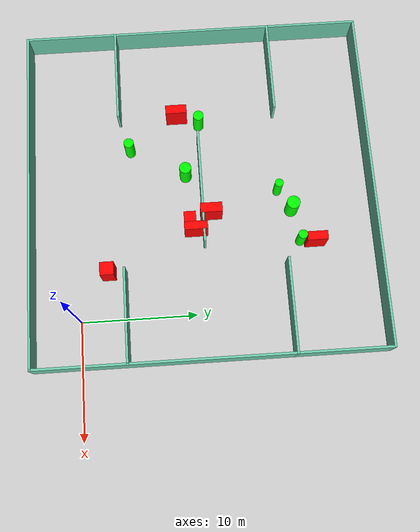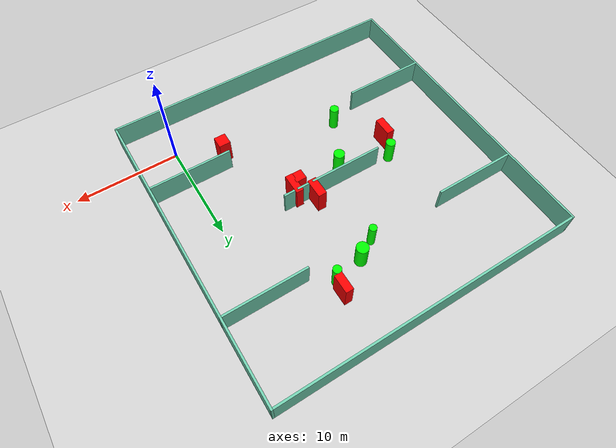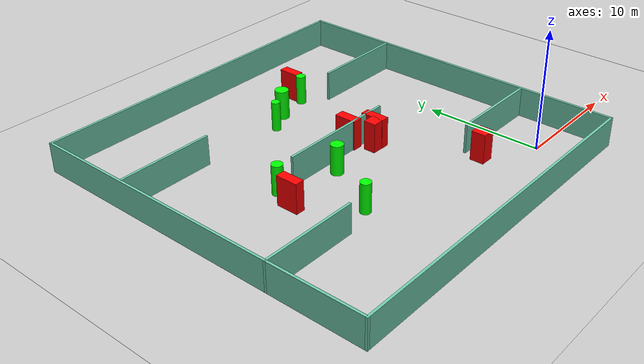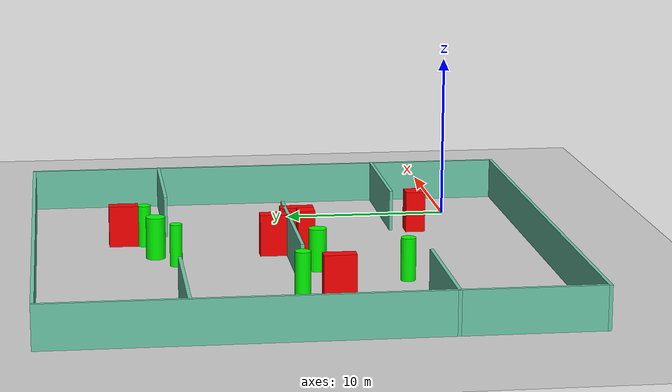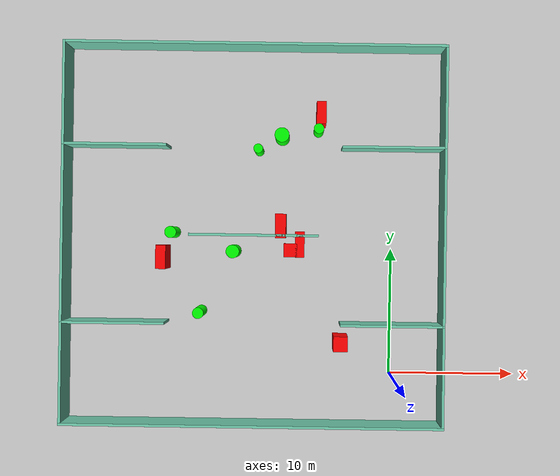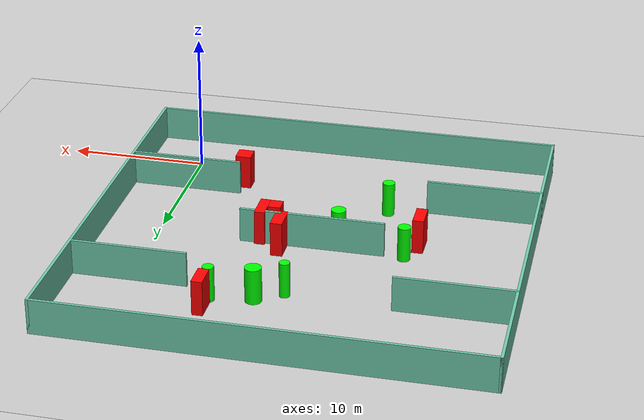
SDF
<sdf version="1.7">
 <world name="default">
  <light name="sun" type="directional">
   <pose>0 0 10 0 -0 0</pose>
   <diffuse>0.8 0.8 0.8 1</diffuse>
   <specular>0.2 0.2 0.2 1</specular>
   <attenuation>
    <range>1000</range>
    <constant>0.9</constant>
    <linear>0.01</linear>
    <quadratic>0.001</quadratic>
   </attenuation>
   <direction>-0.5 0.1 -0.9</direction>
   <spot><inner_angle>0</inner_angle><outer_angle>0</outer_angle><falloff>0</falloff></spot>
  </light>
  <model name="ground_plane">
   <static>1</static>
   <link name="link">
    <collision name="collision">
     <geometry><plane><normal>0 0 1</normal><size>100 100</size></plane></geometry>
     <surface>
      <contact><collide_bitmask>65535</collide_bitmask></contact>
      <friction><ode><mu>100</mu><mu2>50</mu2></ode></friction>
     </surface>
    </collision>
    <visual name="visual">
     <cast_shadows>0</cast_shadows>
     <geometry><plane><normal>0 0 1</normal><size>100 100</size></plane></geometry>
     <material>
      <script><uri>file://media/materials/scripts/gazebo.material</uri><name>Gazebo/Grey</name></script>
     </material>
    </visual>
   </link>
  </model>
  <gravity>0 0 -9.8</gravity>
  <magnetic_field>6e-06 2.3e-05 -4.2e-05</magnetic_field>
  <atmosphere type="adiabatic"/>
  <physics type="ode">
   <max_step_size>0.001</max_step_size>
   <real_time_factor>1</real_time_factor>
   <real_time_update_rate>1000</real_time_update_rate>
  </physics>
  <scene><ambient>0.4 0.4 0.4 1</ambient><background>0.7 0.7 0.7 1</background><shadows>1</shadows></scene>
  <spherical_coordinates>
   <surface_model>EARTH_WGS84</surface_model>
   <latitude_deg>0</latitude_deg>
   <longitude_deg>0</longitude_deg>
   <elevation>0</elevation>
   <heading_deg>0</heading_deg>
  </spherical_coordinates>
  <model name="my_base_walls">
   <link name="Wall_10">
    <collision name="Wall_10_Collision">
     <geometry><box><size>8.2 0.2 2.5</size></box></geometry>
     <pose>0 0 1.25 0 -0 0</pose>
    </collision>
    <visual name="Wall_10_Visual">
     <pose>0 0 1.25 0 -0 0</pose>
     <geometry><box><size>8.2 0.2 2.5</size></box></geometry>
     <material>
      <script><uri>file://media/materials/scripts/gazebo.material</uri><name>Gazebo/Grey</name></script>
      <ambient>0.435294 0.796078 0.67451 1</ambient>
     </material>
     <meta><layer>0</layer></meta>
    </visual>
    <pose>-11 -7 0 0 -0 0</pose>
   </link>
   <link name="Wall_12">
    <collision name="Wall_12_Collision">
     <geometry><box><size>8.2 0.2 2.5</size></box></geometry>
     <pose>0 0 1.25 0 -0 0</pose>
    </collision>
    <visual name="Wall_12_Visual">
     <pose>0 0 1.25 0 -0 0</pose>
     <geometry><box><size>8.2 0.2 2.5</size></box></geometry>
     <material>
      <script><uri>file://media/materials/scripts/gazebo.material</uri><name>Gazebo/Grey</name></script>
      <ambient>0.435294 0.796078 0.67451 1</ambient>
     </material>
     <meta><layer>0</layer></meta>
    </visual>
    <pose>-11 7 0 0 -0 0</pose>
   </link>
   <link name="Wall_14">
    <collision name="Wall_14_Collision">
     <geometry><box><size>8.2 0.2 2.5</size></box></geometry>
     <pose>0 0 1.25 0 -0 0</pose>
    </collision>
    <visual name="Wall_14_Visual">
     <pose>0 0 1.25 0 -0 0</pose>
     <geometry><box><size>8.2 0.2 2.5</size></box></geometry>
     <material>
      <script><uri>file://media/materials/scripts/gazebo.material</uri><name>Gazebo/Grey</name></script>
      <ambient>0.435294 0.796078 0.67451 1</ambient>
     </material>
     <meta><layer>0</layer></meta>
    </visual>
    <pose>11 7 0 0 -0 3.14159</pose>
   </link>
   <link name="Wall_16">
    <collision name="Wall_16_Collision">
     <geometry><box><size>10.2 0.2 2.5</size></box></geometry>
     <pose>0 0 1.25 0 -0 0</pose>
    </collision>
    <visual name="Wall_16_Visual">
     <pose>0 0 1.25 0 -0 0</pose>
     <geometry><box><size>10.2 0.2 2.5</size></box></geometry>
     <material>
      <script><uri>file://media/materials/scripts/gazebo.material</uri><name>Gazebo/Grey</name></script>
      <ambient>0.435294 0.796078 0.67451 1</ambient>
     </material>
     <meta><layer>0</layer></meta>
    </visual>
    <pose>0 0 0 0 -0 3.14159</pose>
   </link>
   <link name="Wall_2">
    <collision name="Wall_2_Collision">
     <geometry><box><size>30.2 0.2 2.5</size></box></geometry>
     <pose>0 0 1.25 0 -0 0</pose>
    </collision>
    <visual name="Wall_2_Visual">
     <pose>0 0 1.25 0 -0 0</pose>
     <geometry><box><size>30.2 0.2 2.5</size></box></geometry>
     <material>
      <script><uri>file://media/materials/scripts/gazebo.material</uri><name>Gazebo/Grey</name></script>
      <ambient>0.435294 0.796078 0.67451 1</ambient>
     </material>
     <meta><layer>0</layer></meta>
    </visual>
    <pose>0 -15 0 0 -0 3.14159</pose>
   </link>
   <link name="Wall_3">
    <collision name="Wall_3_Collision">
     <geometry><box><size>30.2 0.2 2.5</size></box></geometry>
     <pose>0 0 1.25 0 -0 0</pose>
    </collision>
    <visual name="Wall_3_Visual">
     <pose>0 0 1.25 0 -0 0</pose>
     <geometry><box><size>30.2 0.2 2.5</size></box></geometry>
     <material>
      <script><uri>file://media/materials/scripts/gazebo.material</uri><name>Gazebo/Grey</name></script>
      <ambient>0.435294 0.796078 0.67451 1</ambient>
     </material>
     <meta><layer>0</layer></meta>
    </visual>
    <pose>-15 0 0 0 -0 1.5708</pose>
   </link>
   <link name="Wall_4">
    <collision name="Wall_4_Collision">
     <geometry><box><size>30.2 0.2 2.5</size></box></geometry>
     <pose>0 0 1.25 0 -0 0</pose>
    </collision>
    <visual name="Wall_4_Visual">
     <pose>0 0 1.25 0 -0 0</pose>
     <geometry><box><size>30.2 0.2 2.5</size></box></geometry>
     <material>
      <script><uri>file://media/materials/scripts/gazebo.material</uri><name>Gazebo/Grey</name></script>
      <ambient>0.435294 0.796078 0.67451 1</ambient>
     </material>
     <meta><layer>0</layer></meta>
    </visual>
    <pose>0 15 0 0 -0 0</pose>
   </link>
   <link name="Wall_6">
    <collision name="Wall_6_Collision">
     <geometry><box><size>30.2 0.2 2.5</size></box></geometry>
     <pose>0 0 1.25 0 -0 0</pose>
    </collision>
    <visual name="Wall_6_Visual">
     <pose>0 0 1.25 0 -0 0</pose>
     <geometry><box><size>30.2 0.2 2.5</size></box></geometry>
     <material>
      <script><uri>file://media/materials/scripts/gazebo.material</uri><name>Gazebo/Grey</name></script>
      <ambient>0.435294 0.796078 0.67451 1</ambient>
     </material>
     <meta><layer>0</layer></meta>
    </visual>
    <pose>15 0 0 0 -0 1.5708</pose>
   </link>
   <link name="Wall_8">
    <collision name="Wall_8_Collision">
     <geometry><box><size>8.2 0.2 2.5</size></box></geometry>
     <pose>0 0 1.25 0 -0 0</pose>
    </collision>
    <visual name="Wall_8_Visual">
     <pose>0 0 1.25 0 -0 0</pose>
     <geometry><box><size>8.2 0.2 2.5</size></box></geometry>
     <material>
      <script><uri>file://media/materials/scripts/gazebo.material</uri><name>Gazebo/Grey</name></script>
      <ambient>0.435294 0.796078 0.67451 1</ambient>
     </material>
     <meta><layer>0</layer></meta>
    </visual>
    <pose>11 -7 0 0 -0 3.14159</pose>
   </link>
   <static>1</static>
   <pose>-11 11 0 0 -0 0</pose>
  </model>
  <model name="cylinder1">
   <static>1</static>
   <link name="link">
    <inertial>
     <mass>1</mass>
     <inertia><ixx>0.5</ixx><ixy>0</ixy><ixz>0</ixz><iyy>0.5</iyy><iyz>0</iyz><izz>1</izz></inertia>
    </inertial>
    <collision name="collision">
     <geometry><cylinder><radius>0.3649800143704824</radius><length>2.5</length></cylinder></geometry>
    </collision>
    <visual name="visual">
     <geometry><cylinder><radius>0.3649800143704824</radius><length>2.5</length></cylinder></geometry>
     <material>
      <ambient>0 1 0 1</ambient>
      <diffuse>0 1 0 1</diffuse>
      <specular>0.1 0.1 0.1 1</specular>
      <emissive>0 0 0 0</emissive>
     </material>
    </visual>
   </link>
   <pose>-10.702894807851138 17.77707857276166 1.25 0 0 0</pose>
  </model>
  <model name="cylinder2">
   <static>1</static>
   <link name="link">
    <inertial>
     <mass>1</mass>
     <inertia><ixx>0.5</ixx><ixy>0</ixy><ixz>0</ixz><iyy>0.5</iyy><iyz>0</iyz><izz>1</izz></inertia>
    </inertial>
    <collision name="collision">
     <geometry><cylinder><radius>0.4375652589844292</radius><length>2.5</length></cylinder></geometry>
    </collision>
    <visual name="visual">
     <geometry><cylinder><radius>0.4375652589844292</radius><length>2.5</length></cylinder></geometry>
     <material>
      <ambient>0 1 0 1</ambient>
      <diffuse>0 1 0 1</diffuse>
      <specular>0.1 0.1 0.1 1</specular>
      <emissive>0 0 0 0</emissive>
     </material>
    </visual>
   </link>
   <pose>-15.252104270079428 4.83754797294365 1.25 0 0 0</pose>
  </model>
  <model name="cylinder3">
   <static>1</static>
   <link name="link">
    <inertial>
     <mass>1</mass>
     <inertia><ixx>0.5</ixx><ixy>0</ixy><ixz>0</ixz><iyy>0.5</iyy><iyz>0</iyz><izz>1</izz></inertia>
    </inertial>
    <collision name="collision">
     <geometry><cylinder><radius>0.40007596777735044</radius><length>2.5</length></cylinder></geometry>
    </collision>
    <visual name="visual">
     <geometry><cylinder><radius>0.40007596777735044</radius><length>2.5</length></cylinder></geometry>
     <material>
      <ambient>0 1 0 1</ambient>
      <diffuse>0 1 0 1</diffuse>
      <specular>0.1 0.1 0.1 1</specular>
      <emissive>0 0 0 0</emissive>
     </material>
    </visual>
   </link>
   <pose>-5.966915263944307 19.397419676808756 1.25 0 0 0</pose>
  </model>
  <model name="cylinder4">
   <static>1</static>
   <link name="link">
    <inertial>
     <mass>1</mass>
     <inertia><ixx>0.5</ixx><ixy>0</ixy><ixz>0</ixz><iyy>0.5</iyy><iyz>0</iyz><izz>1</izz></inertia>
    </inertial>
    <collision name="collision">
     <geometry><cylinder><radius>0.5203454312365621</radius><length>2.5</length></cylinder></geometry>
    </collision>
    <visual name="visual">
     <geometry><cylinder><radius>0.5203454312365621</radius><length>2.5</length></cylinder></geometry>
     <material>
      <ambient>0 1 0 1</ambient>
      <diffuse>0 1 0 1</diffuse>
      <specular>0.1 0.1 0.1 1</specular>
      <emissive>0 0 0 0</emissive>
     </material>
    </visual>
   </link>
   <pose>-12.614652186254691 9.692902056652636 1.25 0 0 0</pose>
  </model>
  <model name="cylinder5">
   <static>1</static>
   <link name="link">
    <inertial>
     <mass>1</mass>
     <inertia><ixx>0.5</ixx><ixy>0</ixy><ixz>0</ixz><iyy>0.5</iyy><iyz>0</iyz><izz>1</izz></inertia>
    </inertial>
    <collision name="collision">
     <geometry><cylinder><radius>0.5732887549474641</radius><length>2.5</length></cylinder></geometry>
    </collision>
    <visual name="visual">
     <geometry><cylinder><radius>0.5732887549474641</radius><length>2.5</length></cylinder></geometry>
     <material>
      <ambient>0 1 0 1</ambient>
      <diffuse>0 1 0 1</diffuse>
      <specular>0.1 0.1 0.1 1</specular>
      <emissive>0 0 0 0</emissive>
     </material>
    </visual>
   </link>
   <pose>-8.860385635299801 18.86263802590078 1.25 0 0 0</pose>
  </model>
  <model name="cylinder6">
   <static>1</static>
   <link name="link">
    <inertial>
     <mass>1</mass>
     <inertia><ixx>0.5</ixx><ixy>0</ixy><ixz>0</ixz><iyy>0.5</iyy><iyz>0</iyz><izz>1</izz></inertia>
    </inertial>
    <collision name="collision">
     <geometry><cylinder><radius>0.4549918158960684</radius><length>2.5</length></cylinder></geometry>
    </collision>
    <visual name="visual">
     <geometry><cylinder><radius>0.4549918158960684</radius><length>2.5</length></cylinder></geometry>
     <material>
      <ambient>0 1 0 1</ambient>
      <diffuse>0 1 0 1</diffuse>
      <specular>0.1 0.1 0.1 1</specular>
      <emissive>0 0 0 0</emissive>
     </material>
    </visual>
   </link>
   <pose>-17.488183861476656 11.147697725448857 1.25 0 0 0</pose>
  </model>
  <model name="box1">
   <static>1</static>
   <link name="link">
    <inertial>
     <mass>1</mass>
     <inertia><ixx>0.083</ixx><ixy>0</ixy><ixz>0</ixz><iyy>0.083</iyy><iyz>0</iyz><izz>0.083</izz></inertia>
    </inertial>
    <collision name="collision">
     <geometry><box><size>0.8381545050455417 1.9076011415913725 2.5</size></box></geometry>
    </collision>
    <visual name="visual">
     <geometry><box><size>0.8381545050455417 1.9076011415913725 2.5</size></box></geometry>
     <material>
      <ambient>1 0 0 1</ambient>
      <diffuse>1 0 0 1</diffuse>
      <specular>0.1 0.1 0.1 1</specular>
      <emissive>0 0 0 0</emissive>
     </material>
    </visual>
    <sensor name="my_contact" type="contact">
     <contact><collision>box_collision</collision><topic>__default_topic__</topic></contact>
    </sensor>
   </link>
   <pose>-8.88046690200169 11.73204365777703 1.25 0 0 0</pose>
  </model>
  <model name="box2">
   <static>1</static>
   <link name="link">
    <inertial>
     <mass>1</mass>
     <inertia><ixx>0.083</ixx><ixy>0</ixy><ixz>0</ixz><iyy>0.083</iyy><iyz>0</iyz><izz>0.083</izz></inertia>
    </inertial>
    <collision name="collision">
     <geometry><box><size>0.7829826038651839 1.8714533370232431 2.5</size></box></geometry>
    </collision>
    <visual name="visual">
     <geometry><box><size>0.7829826038651839 1.8714533370232431 2.5</size></box></geometry>
     <material>
      <ambient>1 0 0 1</ambient>
      <diffuse>1 0 0 1</diffuse>
      <specular>0.1 0.1 0.1 1</specular>
      <emissive>0 0 0 0</emissive>
     </material>
    </visual>
    <sensor name="my_contact" type="contact">
     <contact><collision>box_collision</collision><topic>__default_topic__</topic></contact>
    </sensor>
   </link>
   <pose>-18.237978749900044 9.191147321353714 1.25 0 0 0</pose>
  </model>
  <model name="box3">
   <static>1</static>
   <link name="link">
    <inertial>
     <mass>1</mass>
     <inertia><ixx>0.083</ixx><ixy>0</ixy><ixz>0</ixz><iyy>0.083</iyy><iyz>0</iyz><izz>0.083</izz></inertia>
    </inertial>
    <collision name="collision">
     <geometry><box><size>1.0444665979445997 1.0351138018804538 2.5</size></box></geometry>
    </collision>
    <visual name="visual">
     <geometry><box><size>1.0444665979445997 1.0351138018804538 2.5</size></box></geometry>
     <material>
      <ambient>1 0 0 1</ambient>
      <diffuse>1 0 0 1</diffuse>
      <specular>0.1 0.1 0.1 1</specular>
      <emissive>0 0 0 0</emissive>
     </material>
    </visual>
    <sensor name="my_contact" type="contact">
     <contact><collision>box_collision</collision><topic>__default_topic__</topic></contact>
    </sensor>
   </link>
   <pose>-8.099569716643025 9.839428456516192 1.25 0 0 0</pose>
  </model>
  <model name="box4">
   <static>1</static>
   <link name="link">
    <inertial>
     <mass>1</mass>
     <inertia><ixx>0.083</ixx><ixy>0</ixy><ixz>0</ixz><iyy>0.083</iyy><iyz>0</iyz><izz>0.083</izz></inertia>
    </inertial>
    <collision name="collision">
     <geometry><box><size>0.7265875521962887 2.0229640717923614 2.5</size></box></geometry>
    </collision>
    <visual name="visual">
     <geometry><box><size>0.7265875521962887 2.0229640717923614 2.5</size></box></geometry>
     <material>
      <ambient>1 0 0 1</ambient>
      <diffuse>1 0 0 1</diffuse>
      <specular>0.1 0.1 0.1 1</specular>
      <emissive>0 0 0 0</emissive>
     </material>
    </visual>
    <sensor name="my_contact" type="contact">
     <contact><collision>box_collision</collision><topic>__default_topic__</topic></contact>
    </sensor>
   </link>
   <pose>-7.361597714437181 10.312841887268931 1.25 0 0 0</pose>
  </model>
  <model name="box5">
   <static>1</static>
   <link name="link">
    <inertial>
     <mass>1</mass>
     <inertia><ixx>0.083</ixx><ixy>0</ixy><ixz>0</ixz><iyy>0.083</iyy><iyz>0</iyz><izz>0.083</izz></inertia>
    </inertial>
    <collision name="collision">
     <geometry><box><size>1.1271076393860313 1.1948629906386867 2.5</size></box></geometry>
    </collision>
    <visual name="visual">
     <geometry><box><size>1.1271076393860313 1.1948629906386867 2.5</size></box></geometry>
     <material>
      <ambient>1 0 0 1</ambient>
      <diffuse>1 0 0 1</diffuse>
      <specular>0.1 0.1 0.1 1</specular>
      <emissive>0 0 0 0</emissive>
     </material>
    </visual>
    <sensor name="my_contact" type="contact">
     <contact><collision>box_collision</collision><topic>__default_topic__</topic></contact>
    </sensor>
   </link>
   <pose>-4.066504916237781 2.543334942578392 1.25 0 0 0</pose>
  </model>
  <model name="box6">
   <static>1</static>
   <link name="link">
    <inertial>
     <mass>1</mass>
     <inertia><ixx>0.083</ixx><ixy>0</ixy><ixz>0</ixz><iyy>0.083</iyy><iyz>0</iyz><izz>0.083</izz></inertia>
    </inertial>
    <collision name="collision">
     <geometry><box><size>0.7508619632138829 1.7540358295761984 2.5</size></box></geometry>
    </collision>
    <visual name="visual">
     <geometry><box><size>0.7508619632138829 1.7540358295761984 2.5</size></box></geometry>
     <material>
      <ambient>1 0 0 1</ambient>
      <diffuse>1 0 0 1</diffuse>
      <specular>0.1 0.1 0.1 1</specular>
      <emissive>0 0 0 0</emissive>
     </material>
    </visual>
    <sensor name="my_contact" type="contact">
     <contact><collision>box_collision</collision><topic>__default_topic__</topic></contact>
    </sensor>
   </link>
   <pose>-5.786582043993777 20.642875723574367 1.25 0 0 0</pose>
  </model>
 </world>
</sdf>
